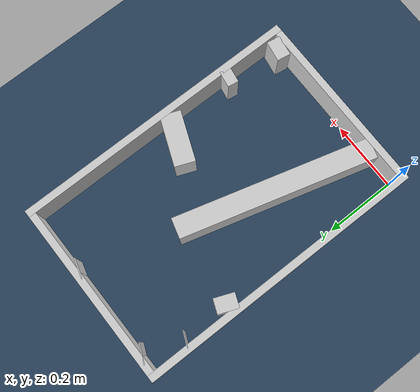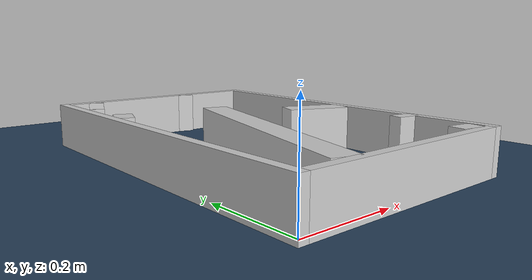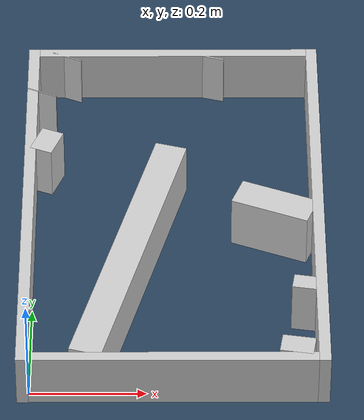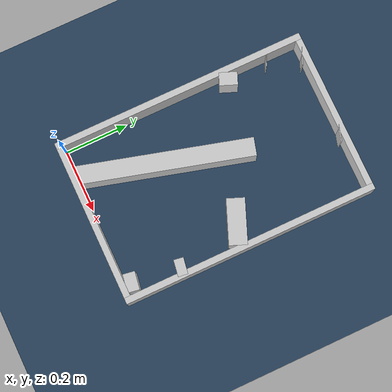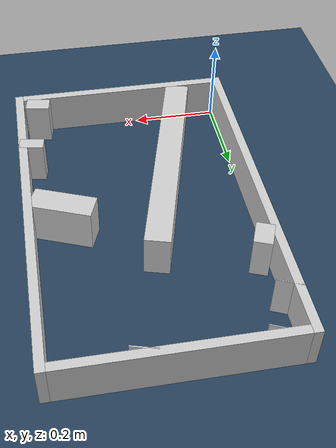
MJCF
<?xml version="1.0" ?>
<mujoco model="generated_real_template">
  <compiler angle="degree"/>
  <option timestep="0.002" integrator="implicitfast" iterations="100" cone="elliptic"/>
  <default>
    <geom density="1"/>
  </default>
  <asset>
    <texture builtin="gradient" height="3072" rgb1="0.3 0.5 0.7" rgb2="0 0 0" type="skybox" width="512"/>
    <texture builtin="checker" height="300" mark="edge" markrgb="0.8 0.8 0.8" name="groundplane" rgb1="0.2 0.3 0.4" rgb2="0.1 0.2 0.3" type="2d" width="300"/>
    <material name="groundplane" reflectance="0.2" texrepeat="5 5" texture="groundplane" texuniform="true"/>
  </asset>
  <worldbody>
    <light dir="0 0 -1" directional="true" pos="0 0 1.5"/>
    <geom name="floor" type="plane" condim="4" friction="0.5 0.005 0.001" material="groundplane" size="0 0 0.05"/>
    <body name="walls">
      <geom name="wall_boundary_left" type="box" condim="4" friction="1.0 0.005 0.0001" rgba="0.8 0.8 0.8 1" pos="-0.010000 0.387500 0.050000" euler="0 0 0.000000" size="0.010000 0.407500 0.050000"/>
      <geom name="wall_boundary_right" type="box" condim="4" friction="1.0 0.005 0.0001" rgba="0.8 0.8 0.8 1" pos="0.500000 0.387500 0.050000" euler="0 0 0.000000" size="0.010000 0.407500 0.050000"/>
      <geom name="wall_boundary_bottom" type="box" condim="4" friction="1.0 0.005 0.0001" rgba="0.8 0.8 0.8 1" pos="0.245000 -0.010000 0.050000" euler="0 0 0.000000" size="0.245000 0.010000 0.050000"/>
      <geom name="wall_boundary_top" type="box" condim="4" friction="1.0 0.005 0.0001" rgba="0.8 0.8 0.8 1" pos="0.245000 0.785000 0.050000" euler="0 0 0.000000" size="0.245000 0.010000 0.050000"/>
      <geom name="wall_inner_1_1" type="box" condim="4" friction="1.0 0.005 0.0001" rgba="0.8 0.8 0.8 1" pos="0.019002 0.539465 0.050000" euler="0 0 -21.719313" size="0.020454 0.028500 0.050000"/>
      <geom name="wall_inner_1_2" type="box" condim="4" friction="1.0 0.005 0.0001" rgba="0.8 0.8 0.8 1" pos="0.424239 0.378044 0.050000" euler="0 0 -21.719313" size="0.070787 0.028500 0.050000"/>
      <geom name="wall_inner_2_1" type="box" condim="4" friction="1.0 0.005 0.0001" rgba="0.8 0.8 0.8 1" pos="0.006609 0.672910 0.050000" euler="0 0 66.682328" size="0.001100 0.028500 0.050000"/>
      <geom name="wall_inner_2_2" type="box" condim="4" friction="1.0 0.005 0.0001" rgba="0.8 0.8 0.8 1" pos="0.050115 0.773844 0.050000" euler="0 0 66.682328" size="0.001259 0.028500 0.050000"/>
      <geom name="wall_inner_3_1" type="box" condim="4" friction="1.0 0.005 0.0001" rgba="0.8 0.8 0.8 1" pos="0.479414 0.169552 0.050000" euler="0 0 -99.099581" size="0.015450 0.028500 0.050000"/>
      <geom name="wall_inner_3_2" type="box" condim="4" friction="1.0 0.005 0.0001" rgba="0.8 0.8 0.8 1" pos="0.455240 0.018622 0.050000" euler="0 0 -99.099581" size="0.018860 0.028500 0.050000"/>
      <geom name="wall_inner_4_1" type="box" condim="4" friction="1.0 0.005 0.0001" rgba="0.8 0.8 0.8 1" pos="0.169056 0.262504 0.050000" euler="0 0 74.460532" size="0.272464 0.028500 0.050000"/>
      <geom name="wall_inner_4_2" type="box" condim="4" friction="1.0 0.005 0.0001" rgba="0.8 0.8 0.8 1" pos="0.311139 0.773471 0.050000" euler="0 0 74.460532" size="0.001587 0.028500 0.050000"/>
    </body>
  </worldbody>
</mujoco>
